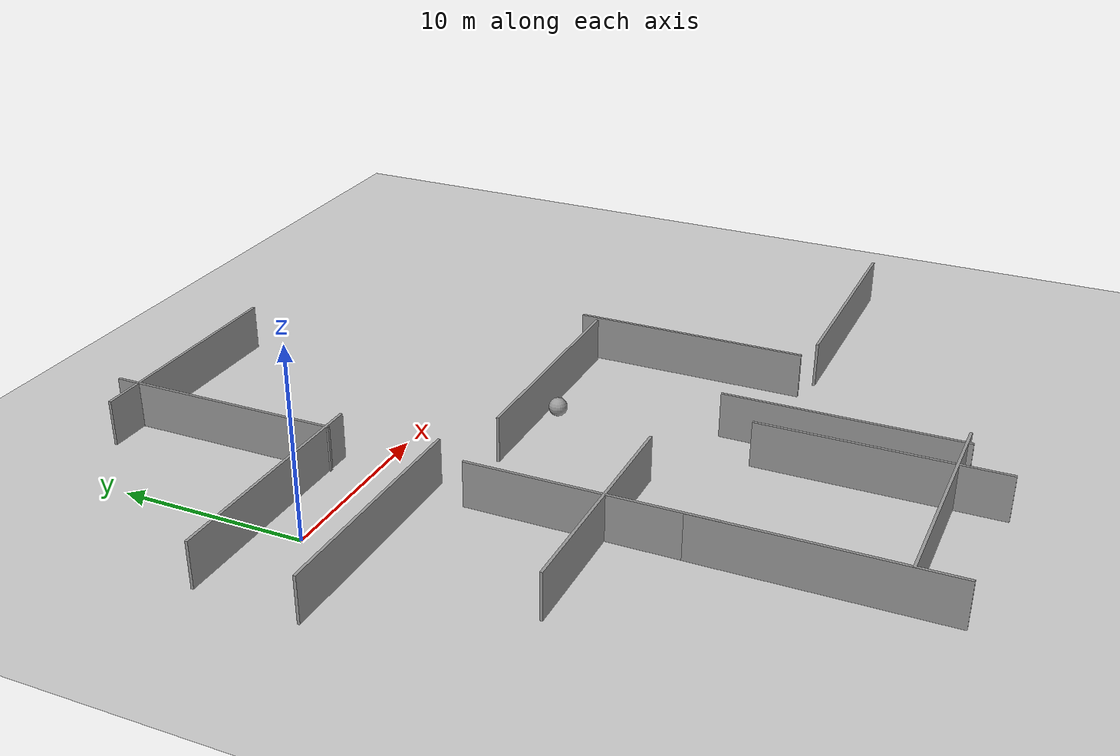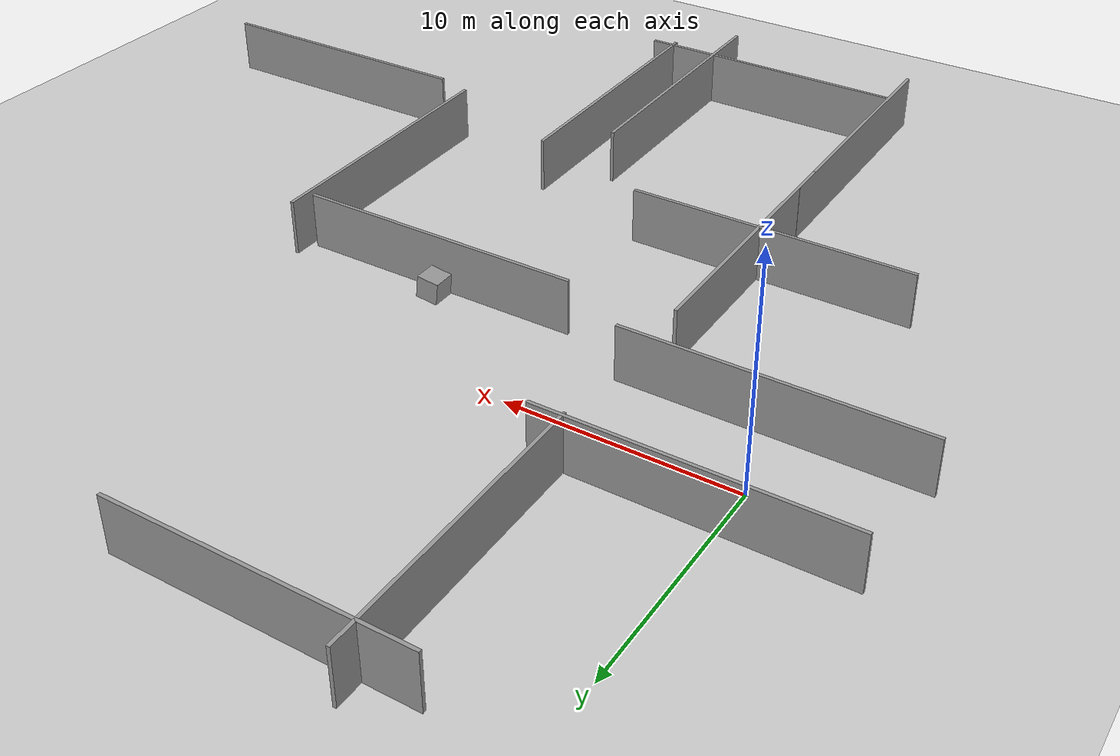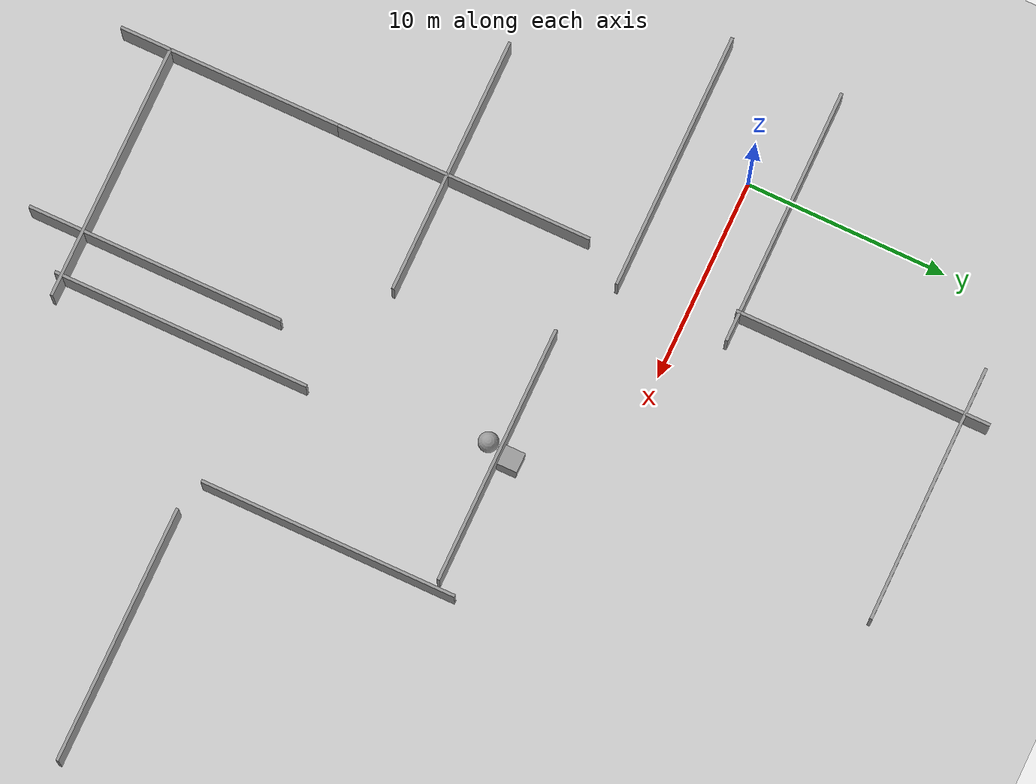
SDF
<sdf version="1.6">
 <world name="default">
  <light name="sun" type="directional">
   <pose>0 0 10 0 -0 0</pose>
   <diffuse>0.8 0.8 0.8 1</diffuse>
   <specular>0.2 0.2 0.2 1</specular>
   <attenuation>
    <range>1000</range>
    <constant>0.9</constant>
    <linear>0.01</linear>
    <quadratic>0.001</quadratic>
   </attenuation>
   <direction>-0.5 0.1 -0.9</direction>
  </light>
  <gravity>0 0 -9.8</gravity>
  <magnetic_field>6e-06 2.3e-05 -4.2e-05</magnetic_field>
  <atmosphere type="adiabatic"/>
  <physics name="default_physics" default="0" type="ode">
   <max_step_size>0.001</max_step_size>
   <real_time_factor>1</real_time_factor>
   <real_time_update_rate>1000</real_time_update_rate>
  </physics>
  <scene><ambient>0.4 0.4 0.4 1</ambient><background>0.7 0.7 0.7 1</background><shadows>1</shadows></scene>
  <spherical_coordinates>
   <surface_model>EARTH_WGS84</surface_model>
   <latitude_deg>0</latitude_deg>
   <longitude_deg>0</longitude_deg>
   <elevation>0</elevation>
   <heading_deg>0</heading_deg>
  </spherical_coordinates>
  <model name="walluse">
   <pose>0.848569 -3.41982 0 0 -0 0</pose>
   <link name="Wall_0">
    <collision name="Wall_0_Collision">
     <geometry><box><size>12.75 0.15 2.5</size></box></geometry>
     <pose>0 0 1.25 0 -0 0</pose>
    </collision>
    <visual name="Wall_0_Visual">
     <pose>0 0 1.25 0 -0 0</pose>
     <geometry><box><size>12.75 0.15 2.5</size></box></geometry>
     <material>
      <script><uri>file://media/materials/scripts/gazebo.material</uri><name>Gazebo/Grey</name></script>
      <ambient>1 1 1 1</ambient>
     </material>
     <meta><layer>0</layer></meta>
    </visual>
   </link>
   <static>1</static>
  </model>
  <model name="walluse_clone">
   <pose>1.09854 2.24298 0 0 -0 0</pose>
   <link name="Wall_0">
    <collision name="Wall_0_Collision">
     <geometry><box><size>12.75 0.15 2.5</size></box></geometry>
     <pose>0 0 1.25 0 -0 0</pose>
    </collision>
    <visual name="Wall_0_Visual">
     <pose>0 0 1.25 0 -0 0</pose>
     <geometry><box><size>12.75 0.15 2.5</size></box></geometry>
     <material>
      <script><uri>file://media/materials/scripts/gazebo.material</uri><name>Gazebo/Grey</name></script>
      <ambient>1 1 1 1</ambient>
     </material>
     <meta><layer>0</layer></meta>
    </visual>
   </link>
   <static>1</static>
  </model>
  <model name="walluse_clone_1_clone">
   <pose>10.0005 13.5703 0 0 -0 0</pose>
   <link name="Wall_0">
    <collision name="Wall_0_Collision">
     <geometry><box><size>12.75 0.15 2.5</size></box></geometry>
     <pose>0 0 1.25 0 -0 0</pose>
    </collision>
    <visual name="Wall_0_Visual">
     <pose>0 0 1.25 0 -0 0</pose>
     <geometry><box><size>12.75 0.15 2.5</size></box></geometry>
     <material>
      <script><uri>file://media/materials/scripts/gazebo.material</uri><name>Gazebo/Grey</name></script>
      <ambient>1 1 1 1</ambient>
     </material>
     <meta><layer>0</layer></meta>
    </visual>
   </link>
   <static>1</static>
  </model>
  <model name="walluse_clone_0_clone_clone">
   <pose>5.98239 8.45043 0 0 -0 1.57672</pose>
   <link name="Wall_0">
    <collision name="Wall_0_Collision">
     <geometry><box><size>12.75 0.15 2.5</size></box></geometry>
     <pose>0 0 1.25 0 -0 0</pose>
    </collision>
    <visual name="Wall_0_Visual">
     <pose>0 0 1.25 0 -0 0</pose>
     <geometry><box><size>12.75 0.15 2.5</size></box></geometry>
     <material>
      <script><uri>file://media/materials/scripts/gazebo.material</uri><name>Gazebo/Grey</name></script>
      <ambient>1 1 1 1</ambient>
     </material>
     <meta><layer>0</layer></meta>
    </visual>
   </link>
   <static>1</static>
  </model>
  <model name="walluse_clone_1_clone_clone_0">
   <pose>16.6868 -5.05617 0 0 -0 0</pose>
   <link name="Wall_0">
    <collision name="Wall_0_Collision">
     <geometry><box><size>12.75 0.15 2.5</size></box></geometry>
     <pose>0 0 1.25 0 -0 0</pose>
    </collision>
    <visual name="Wall_0_Visual">
     <pose>0 0 1.25 0 -0 0</pose>
     <geometry><box><size>12.75 0.15 2.5</size></box></geometry>
     <material>
      <script><uri>file://media/materials/scripts/gazebo.material</uri><name>Gazebo/Grey</name></script>
      <ambient>1 1 1 1</ambient>
     </material>
     <meta><layer>0</layer></meta>
    </visual>
   </link>
   <static>1</static>
  </model>
  <model name="walluse_clone_0_clone_0">
   <pose>5.85185 -11.8072 0 0 -0 1.57672</pose>
   <link name="Wall_0">
    <collision name="Wall_0_Collision">
     <geometry><box><size>12.75 0.15 2.5</size></box></geometry>
     <pose>0 0 1.25 0 -0 0</pose>
    </collision>
    <visual name="Wall_0_Visual">
     <pose>0 0 1.25 0 -0 0</pose>
     <geometry><box><size>12.75 0.15 2.5</size></box></geometry>
     <material>
      <script><uri>file://media/materials/scripts/gazebo.material</uri><name>Gazebo/Grey</name></script>
      <ambient>1 1 1 1</ambient>
     </material>
     <meta><layer>0</layer></meta>
    </visual>
   </link>
   <static>1</static>
  </model>
  <model name="walluse_clone_0_clone_0_clone">
   <pose>23.4569 -10.4273 0 0 -0 1.57672</pose>
   <link name="Wall_0">
    <collision name="Wall_0_Collision">
     <geometry><box><size>12.75 0.15 2.5</size></box></geometry>
     <pose>0 0 1.25 0 -0 0</pose>
    </collision>
    <visual name="Wall_0_Visual">
     <pose>0 0 1.25 0 -0 0</pose>
     <geometry><box><size>12.75 0.15 2.5</size></box></geometry>
     <material>
      <script><uri>file://media/materials/scripts/gazebo.material</uri><name>Gazebo/Grey</name></script>
      <ambient>1 1 1 1</ambient>
     </material>
     <meta><layer>0</layer></meta>
    </visual>
   </link>
   <static>1</static>
  </model>
  <model name="walluse_clone_1_clone_0">
   <pose>5.37371 -12.6507 0 0 -0 0</pose>
   <link name="Wall_0">
    <collision name="Wall_0_Collision">
     <geometry><box><size>12.75 0.15 2.5</size></box></geometry>
     <pose>0 0 1.25 0 -0 0</pose>
    </collision>
    <visual name="Wall_0_Visual">
     <pose>0 0 1.25 0 -0 0</pose>
     <geometry><box><size>12.75 0.15 2.5</size></box></geometry>
     <material>
      <script><uri>file://media/materials/scripts/gazebo.material</uri><name>Gazebo/Grey</name></script>
      <ambient>1 1 1 1</ambient>
     </material>
     <meta><layer>0</layer></meta>
    </visual>
   </link>
   <static>1</static>
  </model>
  <model name="walluse_clone_0_clone_0_clone_clone">
   <pose>15.2744 -23.063 0 0 -0 1.57672</pose>
   <link name="Wall_0">
    <collision name="Wall_0_Collision">
     <geometry><box><size>12.75 0.15 2.5</size></box></geometry>
     <pose>0 0 1.25 0 -0 0</pose>
    </collision>
    <visual name="Wall_0_Visual">
     <pose>0 0 1.25 0 -0 0</pose>
     <geometry><box><size>12.75 0.15 2.5</size></box></geometry>
     <material>
      <script><uri>file://media/materials/scripts/gazebo.material</uri><name>Gazebo/Grey</name></script>
      <ambient>1 1 1 1</ambient>
     </material>
     <meta><layer>0</layer></meta>
    </visual>
   </link>
   <static>1</static>
  </model>
  <model name="walluse_clone_1_clone_clone_0_clone_clone">
   <pose>31.4846 -17.24 0 0 -0 0</pose>
   <link name="Wall_0">
    <collision name="Wall_0_Collision">
     <geometry><box><size>12.75 0.15 2.5</size></box></geometry>
     <pose>0 0 1.25 0 -0 0</pose>
    </collision>
    <visual name="Wall_0_Visual">
     <pose>0 0 1.25 0 -0 0</pose>
     <geometry><box><size>12.75 0.15 2.5</size></box></geometry>
     <material>
      <script><uri>file://media/materials/scripts/gazebo.material</uri><name>Gazebo/Grey</name></script>
      <ambient>1 1 1 1</ambient>
     </material>
     <meta><layer>0</layer></meta>
    </visual>
   </link>
   <static>1</static>
  </model>
  <model name="walluse_clone_0_clone_0_clone_0">
   <pose>5.90775 -22.8551 0 0 -0 1.57672</pose>
   <link name="Wall_0">
    <collision name="Wall_0_Collision">
     <geometry><box><size>12.75 0.15 2.5</size></box></geometry>
     <pose>0 0 1.25 0 -0 0</pose>
    </collision>
    <visual name="Wall_0_Visual">
     <pose>0 0 1.25 0 -0 0</pose>
     <geometry><box><size>12.75 0.15 2.5</size></box></geometry>
     <material>
      <script><uri>file://media/materials/scripts/gazebo.material</uri><name>Gazebo/Grey</name></script>
      <ambient>1 1 1 1</ambient>
     </material>
     <meta><layer>0</layer></meta>
    </visual>
   </link>
   <static>1</static>
  </model>
  <model name="walluse_clone_1_clone_1">
   <pose>12.2624 -26.722 0 0 -0 0</pose>
   <link name="Wall_0">
    <collision name="Wall_0_Collision">
     <geometry><box><size>12.75 0.15 2.5</size></box></geometry>
     <pose>0 0 1.25 0 -0 0</pose>
    </collision>
    <visual name="Wall_0_Visual">
     <pose>0 0 1.25 0 -0 0</pose>
     <geometry><box><size>12.75 0.15 2.5</size></box></geometry>
     <material>
      <script><uri>file://media/materials/scripts/gazebo.material</uri><name>Gazebo/Grey</name></script>
      <ambient>1 1 1 1</ambient>
     </material>
     <meta><layer>0</layer></meta>
    </visual>
   </link>
   <static>1</static>
  </model>
  <model name="unit_sphere_0">
   <pose>16.071 -5.79003 0.49999 0 -0 0</pose>
   <link name="link">
    <inertial>
     <mass>1</mass>
     <inertia><ixx>0.1</ixx><ixy>0</ixy><ixz>0</ixz><iyy>0.1</iyy><iyz>0</iyz><izz>0.1</izz></inertia>
    </inertial>
    <collision name="collision"><geometry><sphere><radius>0.5</radius></sphere></geometry></collision>
    <visual name="visual">
     <geometry><sphere><radius>0.5</radius></sphere></geometry>
     <material>
      <script><name>Gazebo/Grey</name><uri>file://media/materials/scripts/gazebo.material</uri></script>
     </material>
    </visual>
   </link>
  </model>
  <model name="unit_box_0">
   <pose>16.456 -4.48301 0.496936 -1.3e-05 -0.122332 0.00425</pose>
   <link name="link">
    <inertial>
     <mass>1</mass>
     <inertia>
      <ixx>0.166667</ixx>
      <ixy>0</ixy>
      <ixz>0</ixz>
      <iyy>0.166667</iyy>
      <iyz>0</iyz>
      <izz>0.166667</izz>
     </inertia>
    </inertial>
    <collision name="collision"><geometry><box><size>1 1 1</size></box></geometry></collision>
    <visual name="visual">
     <geometry><box><size>1 1 1</size></box></geometry>
     <material>
      <script><name>Gazebo/Grey</name><uri>file://media/materials/scripts/gazebo.material</uri></script>
     </material>
    </visual>
   </link>
  </model>
  <model name="walluse_clone_0_clone_0_clone_0_clone">
   <pose>17.5387 -20.6822 0 0 -0 1.57672</pose>
   <link name="Wall_0">
    <collision name="Wall_0_Collision">
     <geometry><box><size>12.75 0.15 2.5</size></box></geometry>
     <pose>0 0 1.25 0 -0 0</pose>
    </collision>
    <visual name="Wall_0_Visual">
     <pose>0 0 1.25 0 -0 0</pose>
     <geometry><box><size>12.75 0.15 2.5</size></box></geometry>
     <material>
      <script><uri>file://media/materials/scripts/gazebo.material</uri><name>Gazebo/Grey</name></script>
      <ambient>1 1 1 1</ambient>
     </material>
     <meta><layer>0</layer></meta>
    </visual>
   </link>
   <static>1</static>
  </model>
  <model name="ground_plane">
   <static>1</static>
   <link name="link">
    <collision name="collision">
     <geometry><plane><normal>0 0 1</normal><size>100 100</size></plane></geometry>
     <surface>
      <contact><collide_bitmask>65535</collide_bitmask></contact>
      <friction><ode><mu>100</mu><mu2>50</mu2></ode></friction>
     </surface>
    </collision>
    <visual name="visual">
     <cast_shadows>0</cast_shadows>
     <geometry><plane><normal>0 0 1</normal><size>100 100</size></plane></geometry>
     <material>
      <script><uri>file://media/materials/scripts/gazebo.material</uri><name>Gazebo/Grey</name></script>
     </material>
    </visual>
   </link>
   <pose>2.93851 -2.95076 0 0 -0 0</pose>
  </model>
 </world>
</sdf>
